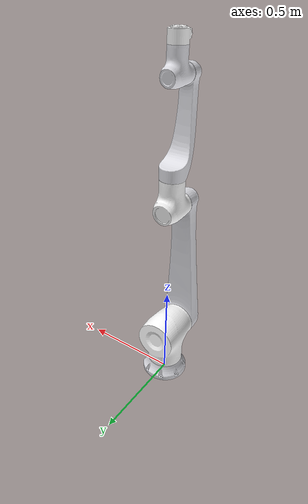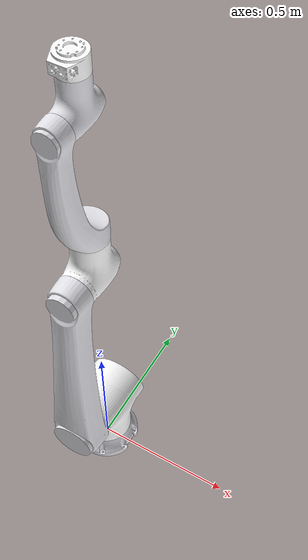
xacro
<robot
  name="elfin15" xmlns:xacro="http://www.ros.org/wiki/xacro">

  <xacro:include filename="$(find elfin_description)/urdf/materials.xacro" />

  <xacro:include filename="$(find elfin_description)/urdf/elfin_robot.gazebo" />

  <xacro:include filename="$(find elfin_description)/urdf/elfin_transmission.xacro" />

  <link name="world" />

  <joint name="world_base" type="fixed">
    <origin
      xyz="0 0 0"
      rpy="0 0 0" />
    <parent
      link="world" />
    <child
      link="elfin_base_link" />
  </joint>

  <link name="elfin_base_link" />

  <joint name="elfin_base_joint" type="fixed">
    <origin
      xyz="0 0 0"
      rpy="0 0 0" />
    <parent
      link="elfin_base_link" />
    <child
      link="elfin_base" />
  </joint>

  <link
    name="elfin_base">
    <inertial>
      <origin
        xyz="-0.00136943117439078 -2.2883687794971E-06 0.037653456901999"
        rpy="0 0 0" />
      <mass
        value="7.29685766810245" />
      <inertia
        ixx="0.0253289354355793"
        ixy="9.31156473219125E-08"
        ixz="-0.000185995712246883"
        iyy="0.0242633188941406"
        iyz="-5.25886087064228E-07"
        izz="0.0424125697382868" />
    </inertial>
    <visual>
      <origin
        xyz="0 0 0"
        rpy="0 0 0" />
      <geometry>
        <mesh
          filename="package://elfin_description/meshes/elfin15/elfin_base.STL" />
      </geometry>
      <material
        name="">
        <color
          rgba="0.866666666666667 0.866666666666667 0.890196078431372 1" />
      </material>
    </visual>
    <collision>
      <origin
        xyz="0 0 0"
        rpy="0 0 0" />
      <geometry>
        <mesh
          filename="package://elfin_description/meshes/elfin15/elfin_base.STL" />
      </geometry>
    </collision>
  </link>
  <link
    name="elfin_link1">
    <inertial>
      <origin
        xyz="-1.88838434646975E-06 -0.00357534605111417 -0.0358732421913592"
        rpy="0 0 0" />
      <mass
        value="26.1752707800957" />
      <inertia
        ixx="0.235852905806904"
        ixy="-2.93045226725672E-06"
        ixz="-7.40247338756675E-06"
        iyy="0.211816347359602"
        iyz="0.00543673722583904"
        izz="0.158448663526753" />
    </inertial>
    <visual>
      <origin
        xyz="0 0 0"
        rpy="0 0 0" />
      <geometry>
        <mesh
          filename="package://elfin_description/meshes/elfin15/elfin_link1.STL" />
      </geometry>
      <material
        name="">
        <color
          rgba="1 1 1 1" />
      </material>
    </visual>
    <collision>
      <origin
        xyz="0 0 0"
        rpy="0 0 0" />
      <geometry>
        <mesh
          filename="package://elfin_description/meshes/elfin15/elfin_link1.STL" />
      </geometry>
    </collision>
  </link>
  <joint
    name="elfin_joint1"
    type="revolute">
    <origin
      xyz="0 0 0.262"
      rpy="0 0 0" />
    <parent
      link="elfin_base" />
    <child
      link="elfin_link1" />
    <axis
      xyz="0 0 1" />
    <limit
      lower="-3.14"
      upper="3.14"
      effort="104"
      velocity="1.57" />
  </joint>
  <link
    name="elfin_link2">
    <inertial>
      <origin
        xyz="2.05933361594049E-05 0.292081364859745 0.154041796903471"
        rpy="0 0 0" />
      <mass
        value="25.7826523644554" />
      <inertia
        ixx="1.59115969876519"
        ixy="-0.000158434707227747"
        ixz="-1.28374843136211E-05"
        iyy="0.060560052287277"
        iyz="0.0849224026877452"
        izz="1.60940122192142" />
    </inertial>
    <visual>
      <origin
        xyz="0 0 0"
        rpy="0 0 0" />
      <geometry>
        <mesh
          filename="package://elfin_description/meshes/elfin15/elfin_link2.STL" />
      </geometry>
      <material
        name="">
        <color
          rgba="0.890196078431372 0.890196078431372 0.913725490196078 1" />
      </material>
    </visual>
    <collision>
      <origin
        xyz="0 0 0"
        rpy="0 0 0" />
      <geometry>
        <mesh
          filename="package://elfin_description/meshes/elfin15/elfin_link2.STL" />
      </geometry>
    </collision>
  </link>
  <joint
    name="elfin_joint2"
    type="revolute">
    <origin
      xyz="0 0 0"
      rpy="1.5708 0 0" />
    <parent
      link="elfin_link1" />
    <child
      link="elfin_link2" />
    <axis
      xyz="0 0 1" />
    <limit
      lower="-2.35"
      upper="2.35"
      effort="104"
      velocity="1.27" />
  </joint>
  <link
    name="elfin_link3">
    <inertial>
      <origin
        xyz="0.0361013116039101 -2.09104451848553E-06 -0.00436986898383294"
        rpy="0 0 0" />
      <mass
        value="7.87585395095179" />
      <inertia
        ixx="0.0200598769348272"
        ixy="1.25572941880986E-06"
        ixz="-0.00144896285503519"
        iyy="0.0366449882644546"
        iyz="-3.00644865145763E-07"
        izz="0.0318875682141342" />
    </inertial>
    <visual>
      <origin
        xyz="0 0 0"
        rpy="0 0 0" />
      <geometry>
        <mesh
          filename="package://elfin_description/meshes/elfin15/elfin_link3.STL" />
      </geometry>
      <material
        name="">
        <color
          rgba="1 1 1 1" />
      </material>
    </visual>
    <collision>
      <origin
        xyz="0 0 0"
        rpy="0 0 0" />
      <geometry>
        <mesh
          filename="package://elfin_description/meshes/elfin15/elfin_link3.STL" />
      </geometry>
    </collision>
  </link>
  <joint
    name="elfin_joint3"
    type="revolute">
    <origin
      xyz="0 0.73 0"
      rpy="3.1416 0 1.5708" />
    <parent
      link="elfin_link2" />
    <child
      link="elfin_link3" />
    <axis
      xyz="0 0 1" />
    <limit
      lower="-2.61"
      upper="2.61"
      effort="69"
      velocity="1.57" />
  </joint>
  <link
    name="elfin_link4">
    <inertial>
      <origin
        xyz="3.69861764284435E-05 -0.0650226073262321 0.320849382410806"
        rpy="0 0 0" />
      <mass
        value="7.61387925995651" />
      <inertia
        ixx="0.161940120204655"
        ixy="1.02717997864247E-05"
        ixz="-5.48625255221913E-05"
        iyy="0.150731474481883"
        iyz="0.0342650422202228"
        izz="0.0213730036333396" />
    </inertial>
    <visual>
      <origin
        xyz="0 0 0"
        rpy="0 0 0" />
      <geometry>
        <mesh
          filename="package://elfin_description/meshes/elfin15/elfin_link4.STL" />
      </geometry>
      <material
        name="">
        <color
          rgba="0.890196078431372 0.890196078431372 0.913725490196078 1" />
      </material>
    </visual>
    <collision>
      <origin
        xyz="0 0 0"
        rpy="0 0 0" />
      <geometry>
        <mesh
          filename="package://elfin_description/meshes/elfin15/elfin_link4.STL" />
      </geometry>
    </collision>
  </link>
  <joint
    name="elfin_joint4"
    type="revolute">
    <origin
      xyz="0 0 0"
      rpy="1.5708 0 1.5708" />
    <parent
      link="elfin_link3" />
    <child
      link="elfin_link4" />
    <axis
      xyz="0 0 1" />
    <limit
      lower="-3.14"
      upper="3.14"
      effort="69"
      velocity="1.57" />
  </joint>
  <link
    name="elfin_link5">
    <inertial>
      <origin
        xyz="6.77522132084857E-06 -0.0250232007204512 -0.00249100014694705"
        rpy="0 0 0" />
      <mass
        value="3.39284674348347" />
      <inertia
        ixx="0.00944879053562613"
        ixy="7.3090393126655E-07"
        ixz="-1.33077741472994E-06"
        iyy="0.00546921267104708"
        iyz="0.000269340233974182"
        izz="0.00737260482683482" />
    </inertial>
    <visual>
      <origin
        xyz="0 0 0"
        rpy="0 0 0" />
      <geometry>
        <mesh
          filename="package://elfin_description/meshes/elfin15/elfin_link5.STL" />
      </geometry>
      <material
        name="">
        <color
          rgba="0.890196078431372 0.890196078431372 0.913725490196078 1" />
      </material>
    </visual>
    <collision>
      <origin
        xyz="0 0 0"
        rpy="0 0 0" />
      <geometry>
        <mesh
          filename="package://elfin_description/meshes/elfin15/elfin_link5.STL" />
      </geometry>
    </collision>
  </link>
  <joint
    name="elfin_joint5"
    type="revolute">
    <origin
      xyz="0 0 0.57"
      rpy="-1.5708 0 0" />
    <parent
      link="elfin_link4" />
    <child
      link="elfin_link5" />
    <axis
      xyz="0 0 1" />
    <limit
      lower="-2.56"
      upper="2.56"
      effort="34"
      velocity="1.57" />
  </joint>
  <link
    name="elfin_link6">
    <inertial>
      <origin
        xyz="6.22099058005171E-05 -0.00431404711229788 0.139457759665542"
        rpy="0 0 0" />
      <mass
        value="0.352384368425867" />
      <inertia
        ixx="0.000280634757086635"
        ixy="6.25410940758201E-07"
        ixz="-4.34691641585529E-08"
        iyy="0.000240206263474826"
        iyz="4.37829508628483E-06"
        izz="0.000345500299859831" />
    </inertial>
    <visual>
      <origin
        xyz="0 0 0"
        rpy="0 0 0" />
      <geometry>
        <mesh
          filename="package://elfin_description/meshes/elfin15/elfin_link6.STL" />
      </geometry>
      <material
        name="">
        <color
          rgba="1 1 1 1" />
      </material>
    </visual>
    <collision>
      <origin
        xyz="0 0 0"
        rpy="0 0 0" />
      <geometry>
        <mesh
          filename="package://elfin_description/meshes/elfin15/elfin_link6.STL" />
      </geometry>
    </collision>
  </link>
  <joint
    name="elfin_joint6"
    type="revolute">
    <origin
      xyz="0 0 0"
      rpy="1.5708 0 0" />
    <parent
      link="elfin_link5" />
    <child
      link="elfin_link6" />
    <axis
      xyz="0 0 1" />
    <limit
      lower="-3.14"
      upper="3.14"
      effort="34"
      velocity="1.57" />
  </joint>
  <link
    name="elfin_end_link">
  </link>
  <joint
    name="elfin_end_joint"
    type="fixed">
    <origin
      xyz="0 0 0.1709"
      rpy="0 0 0" />
    <parent
      link="elfin_link6" />
    <child
      link="elfin_end_link" />
    <axis
      xyz="0 0 0" />
  </joint>

  <link name="elfin_dummy_gripper"/>

  <joint name="elfin_dummy_joint" type="fixed">
    <origin
      xyz="0 0.109 0"
      rpy="-1.5708 1.5708 0" />
    <parent
      link="elfin_link6" />
    <child
      link="elfin_dummy_gripper" />
  </joint>

</robot>
